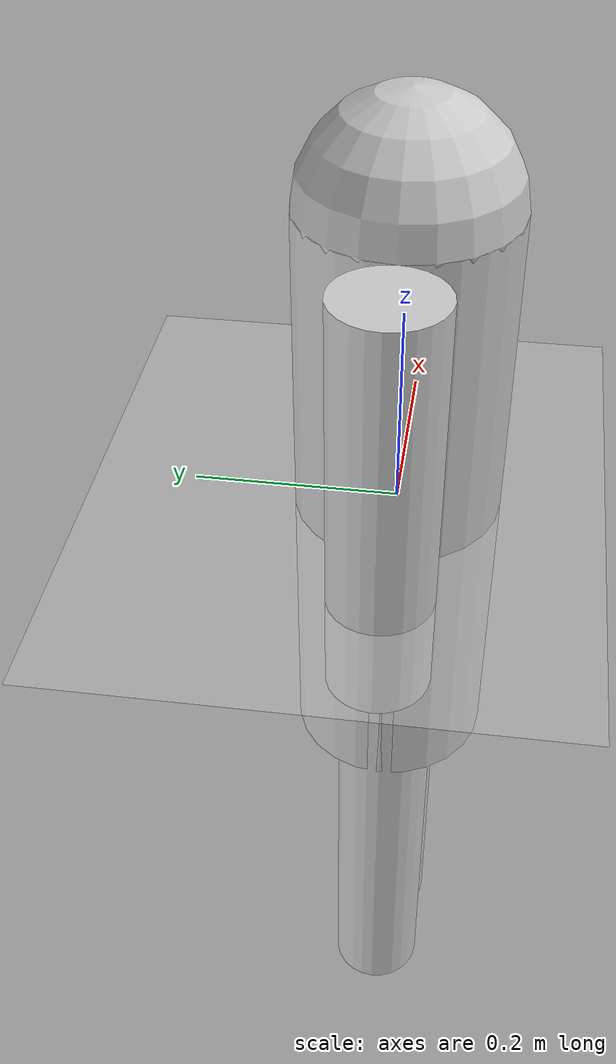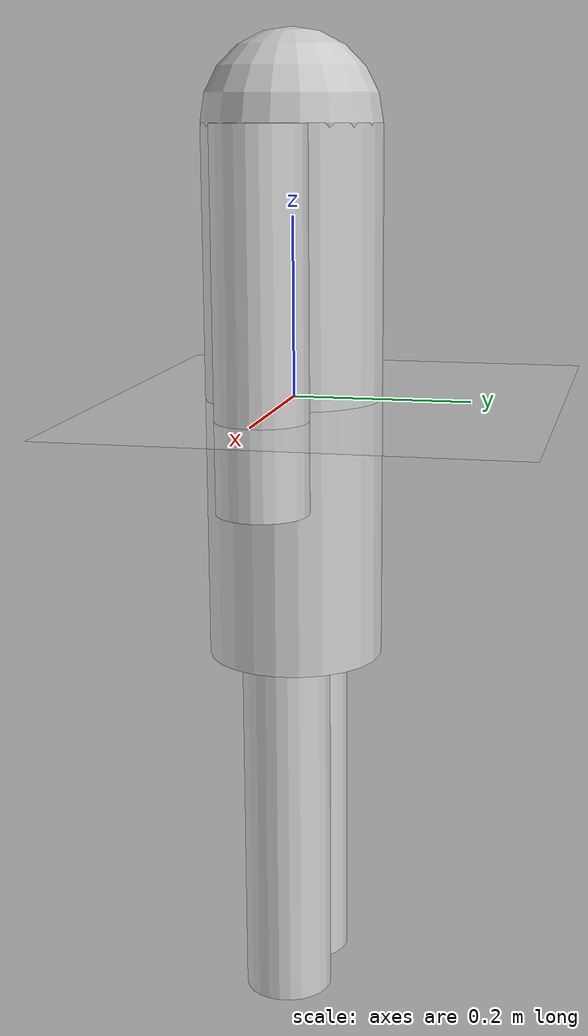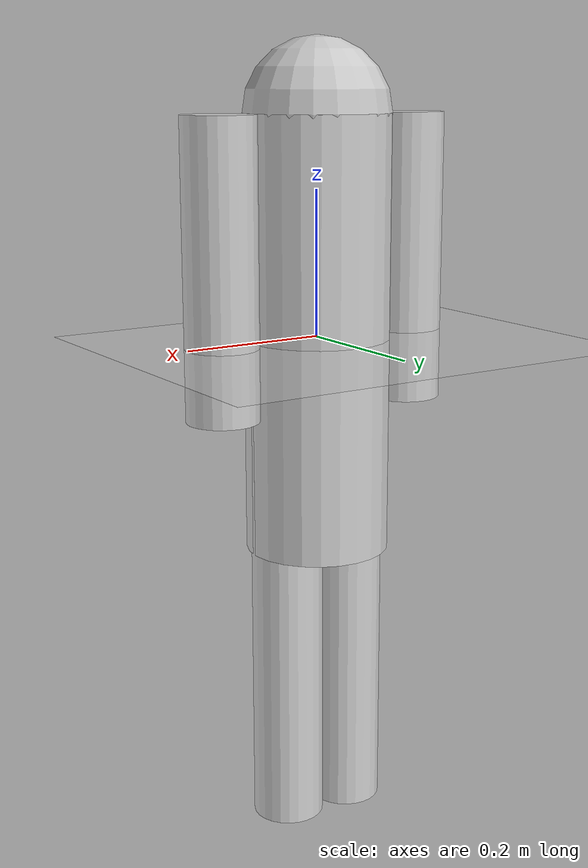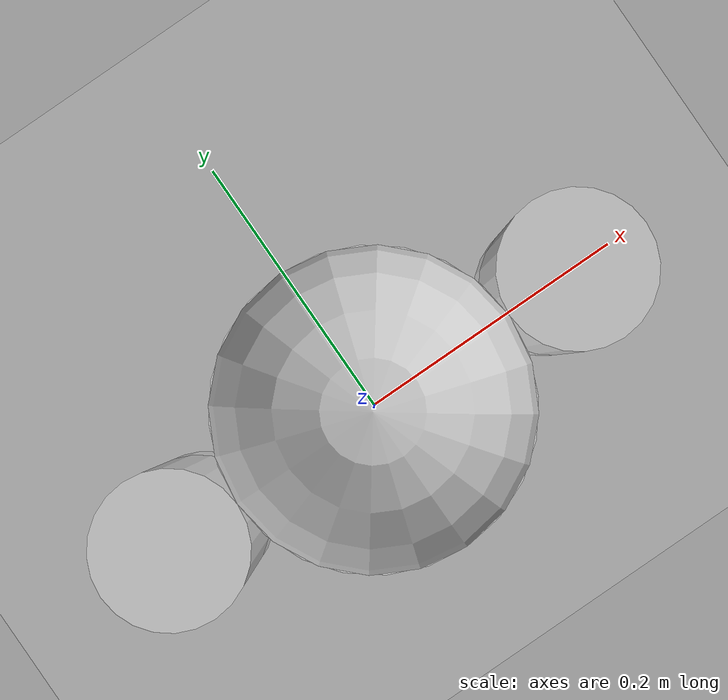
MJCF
<mujoco model="floor and mannequin">

    <visual>
        <headlight diffuse="0.6 0.6 0.6" ambient="0.3 0.3 0.3" specular="0 0 0" />
        <rgba haze="0.15 0.25 0.35 1" />
    </visual>

    <asset>
        <!-- Sky -->
        <texture type="skybox" builtin="gradient" rgb1="0.3 0.5 0.7" rgb2="0 0 0" width="512"
            height="3072" />
        <!-- Ground -->
        <texture type="2d" name="groundplane" builtin="checker" mark="edge" rgb1="0.9 0.9 0.9"
            rgb2="0.8 0.8 0.8"
            markrgb="0.8 0.8 0.8" width="1000" height="1000" />
        <material name="groundplane" texture="groundplane" texuniform="true" texrepeat="1 1"
            reflectance="0.1" />
    </asset>

    <worldbody>
        <light pos="1 -1 1.5" dir="-1 1 -1" diffuse="0.5 0.5 0.5" directional="true" />
        <geom name="floor" group="1" size="0 0 0.05" type="plane" material="groundplane" />

        <!-- Simple mannequin representation -->
        <body name="mannequin" pos="0 0 0">
            <!-- Head -->
            <geom name="head" type="sphere" size="0.1" pos="0 0 0.3" rgba="0.8 0.8 0.8 1"/>
            <!-- Torso -->
            <geom name="torso" type="cylinder" size="0.1 0.3" pos="0 0 0" rgba="0.8 0.8 0.8 1"/>
            <!-- Left arm -->
            <geom name="left_arm" type="cylinder" size="0.05 0.2" pos="0.15 0 0.1" euler="0 0 45" rgba="0.8 0.8 0.8 1"/>
            <!-- Right arm -->
            <geom name="right_arm" type="cylinder" size="0.05 0.2" pos="-0.15 0 0.1" euler="0 0 -45" rgba="0.8 0.8 0.8 1"/>
            <!-- Left leg -->
            <geom name="left_leg" type="cylinder" size="0.05 0.3" pos="0.05 0 -0.4" rgba="0.8 0.8 0.8 1"/>
            <!-- Right leg -->
            <geom name="right_leg" type="cylinder" size="0.05 0.3" pos="-0.05 0 -0.4" rgba="0.8 0.8 0.8 1"/>
        </body>
    </worldbody>

</mujoco>
